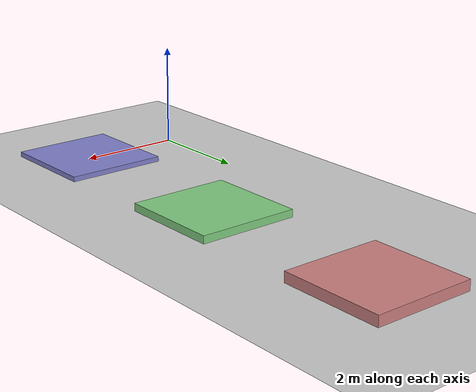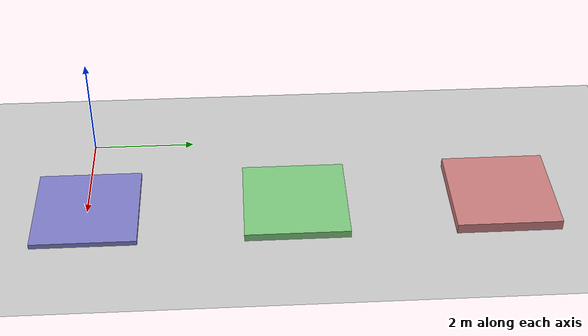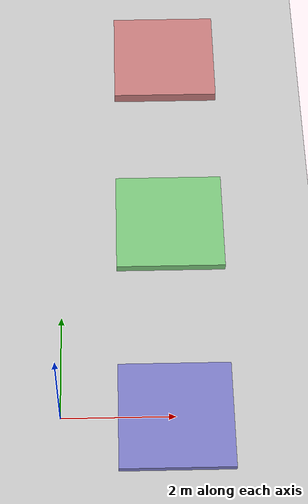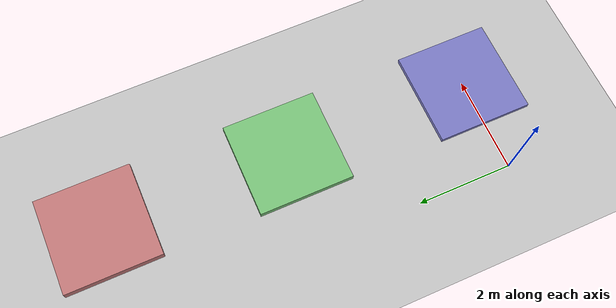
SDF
<?xml version="1.0" ?>
<!--
  Test world for stair descending functionality.
  Contains stairs of different heights for testing.
-->
<sdf version="1.6">
  <world name="stair_descend_test">

    <!-- Physics -->
    <physics name="1ms" type="ignored">
      <max_step_size>0.001</max_step_size>
      <real_time_factor>1.0</real_time_factor>
    </physics>

    <!-- Plugins -->
    <plugin
      filename="ignition-gazebo-physics-system"
      name="ignition::gazebo::systems::Physics">
    </plugin>
    <plugin
      filename="ignition-gazebo-user-commands-system"
      name="ignition::gazebo::systems::UserCommands">
    </plugin>
    <plugin
      filename="ignition-gazebo-scene-broadcaster-system"
      name="ignition::gazebo::systems::SceneBroadcaster">
    </plugin>

    <!-- Lighting -->
    <light type="directional" name="sun">
      <cast_shadows>true</cast_shadows>
      <pose>0 0 10 0 0 0</pose>
      <diffuse>0.8 0.8 0.8 1</diffuse>
      <specular>0.2 0.2 0.2 1</specular>
      <attenuation>
        <range>1000</range>
        <constant>0.9</constant>
        <linear>0.01</linear>
        <quadratic>0.001</quadratic>
      </attenuation>
      <direction>-0.5 0.1 -0.9</direction>
    </light>

    <!-- Ground plane -->
    <model name="ground_plane">
      <static>true</static>
      <link name="link">
        <collision name="collision">
          <geometry>
            <plane>
              <normal>0 0 1</normal>
            </plane>
          </geometry>
        </collision>
        <visual name="visual">
          <geometry>
            <plane>
              <normal>0 0 1</normal>
              <size>100 100</size>
            </plane>
          </geometry>
          <material>
            <ambient>0.8 0.8 0.8 1</ambient>
            <diffuse>0.8 0.8 0.8 1</diffuse>
            <specular>0.8 0.8 0.8 1</specular>
          </material>
        </visual>
      </link>
    </model>

    <!-- Stair 1: 0.1m height -->
    <model name="stair_01">
      <static>true</static>
      <pose>2 0 0.05 0 0 0</pose>
      <link name="link">
        <collision name="collision">
          <geometry>
            <box>
              <size>2 2 0.1</size>
            </box>
          </geometry>
        </collision>
        <visual name="visual">
          <geometry>
            <box>
              <size>2 2 0.1</size>
            </box>
          </geometry>
          <material>
            <ambient>0.5 0.5 0.8 1</ambient>
            <diffuse>0.5 0.5 0.8 1</diffuse>
          </material>
        </visual>
      </link>
    </model>

    <!-- Stair 2: 0.15m height -->
    <model name="stair_015">
      <static>true</static>
      <pose>2 4 0.075 0 0 0</pose>
      <link name="link">
        <collision name="collision">
          <geometry>
            <box>
              <size>2 2 0.15</size>
            </box>
          </geometry>
        </collision>
        <visual name="visual">
          <geometry>
            <box>
              <size>2 2 0.15</size>
            </box>
          </geometry>
          <material>
            <ambient>0.5 0.8 0.5 1</ambient>
            <diffuse>0.5 0.8 0.5 1</diffuse>
          </material>
        </visual>
      </link>
    </model>

    <!-- Stair 3: 0.2m height -->
    <model name="stair_02">
      <static>true</static>
      <pose>2 8 0.1 0 0 0</pose>
      <link name="link">
        <collision name="collision">
          <geometry>
            <box>
              <size>2 2 0.2</size>
            </box>
          </geometry>
        </collision>
        <visual name="visual">
          <geometry>
            <box>
              <size>2 2 0.2</size>
            </box>
          </geometry>
          <material>
            <ambient>0.8 0.5 0.5 1</ambient>
            <diffuse>0.8 0.5 0.5 1</diffuse>
          </material>
        </visual>
      </link>
    </model>

  </world>
</sdf>
